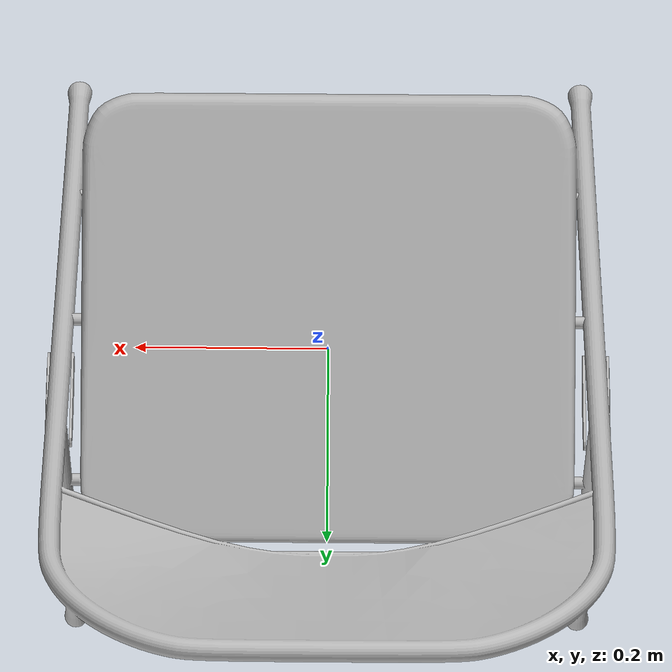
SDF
<?xml version="1.0" ?>
<sdf version="1.5">
  <model name="chair_foldable">
    <link name="link">
      <pose>0 0 0 0 0 0</pose>
      <collision name="collision">
        <geometry>
          <mesh>
            <uri>model://chair_foldable/meshes/model.dae</uri>
          </mesh>
        </geometry>
      </collision>
      <visual name="visual">
        <geometry>
          <mesh>
            <uri>model://chair_foldable/meshes/model.dae</uri>
          </mesh>
        </geometry>
      </visual>
    </link>
    <static>1</static>
  </model>
</sdf>
